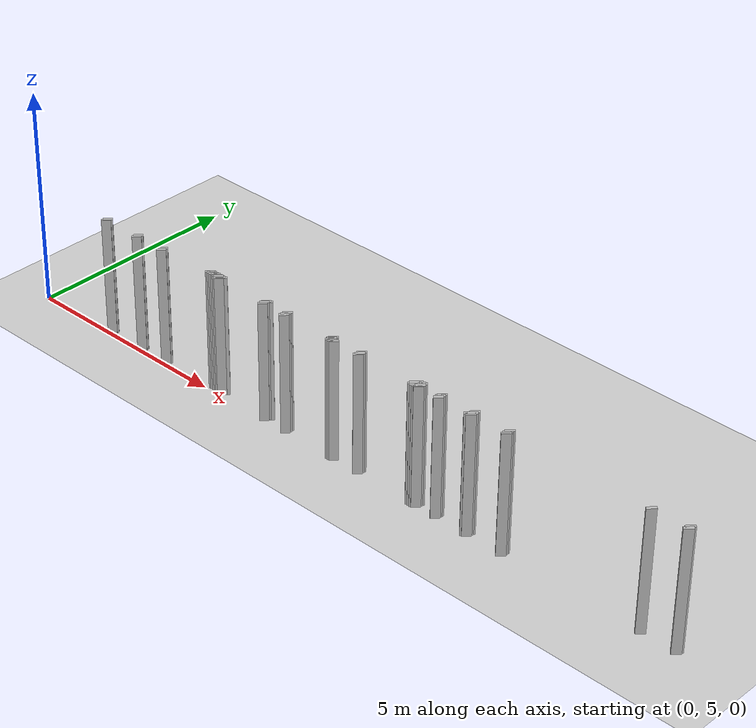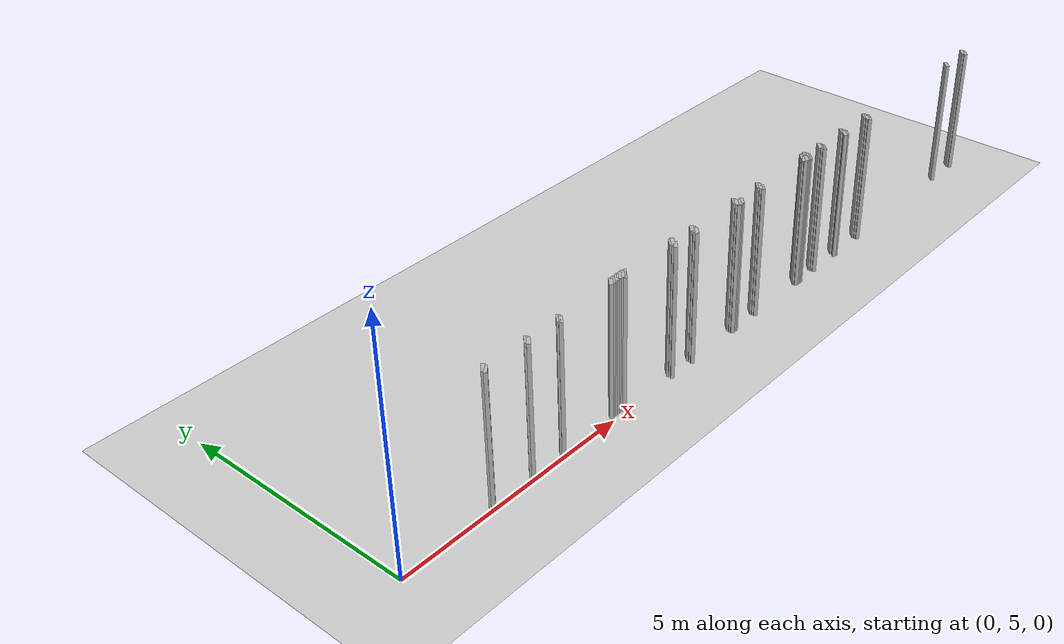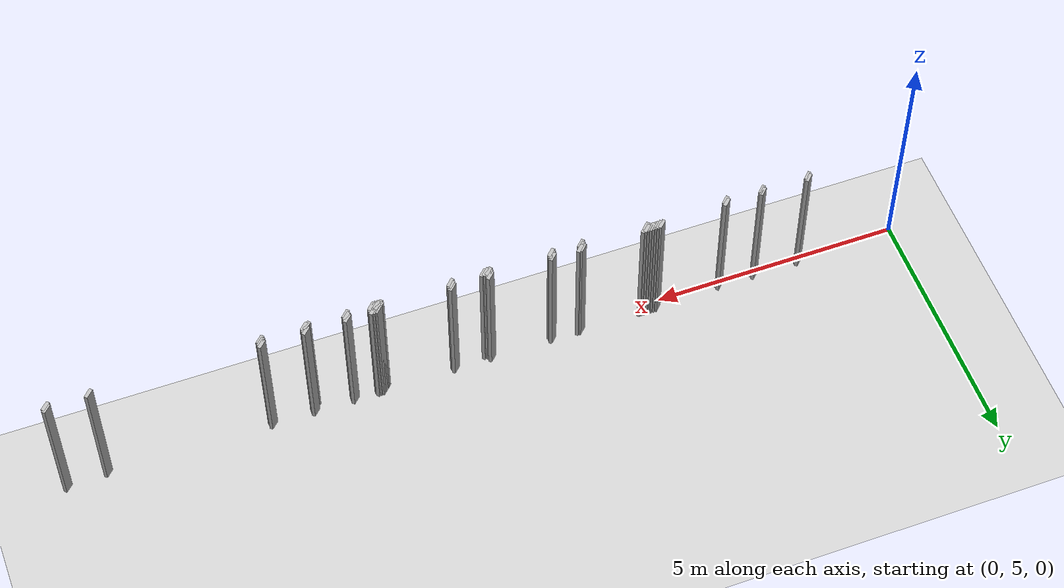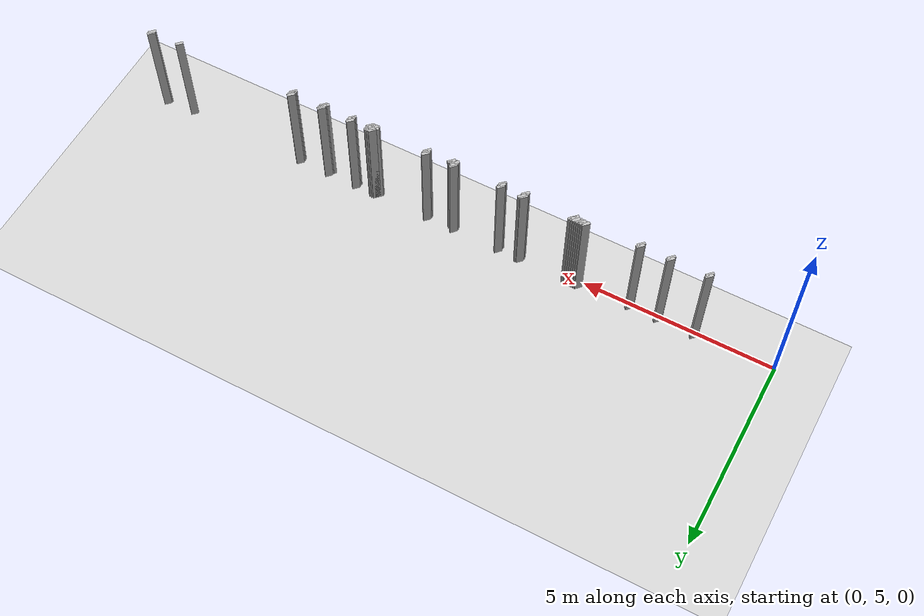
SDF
<sdf version="1.5">
 <world name="default">
  <include><uri>model://ground_plane</uri></include>
  <include><uri>model://sun</uri></include>
  <model name="grey_wall_2969">
   <static>1</static>
   <link name="link">
    <pose>5.1000000000000005 5.15  1.4 0 0 -0.7853981633974483</pose>
    <collision name="collision">
     <geometry><box><size>0.07071067811865576 .2  2.8</size></box></geometry>
    </collision>
    <visual name="visual">
     <cast_shadows>0</cast_shadows>
     <geometry><box><size>0.07071067811865576 .2  2.8</size></box></geometry>
    </visual>
   </link>
  </model>
  <model name="grey_wall_2970">
   <static>1</static>
   <link name="link">
    <pose>5.15 5.15  1.4 0 0 -0.7853981633974483</pose>
    <collision name="collision">
     <geometry><box><size>0.07071067811865576 .2  2.8</size></box></geometry>
    </collision>
    <visual name="visual">
     <cast_shadows>0</cast_shadows>
     <geometry><box><size>0.07071067811865576 .2  2.8</size></box></geometry>
    </visual>
   </link>
  </model>
  <model name="grey_wall_2971">
   <static>1</static>
   <link name="link">
    <pose>5.2 5.15  1.4 0 0 -0.7853981633974483</pose>
    <collision name="collision">
     <geometry><box><size>0.07071067811865576 .2  2.8</size></box></geometry>
    </collision>
    <visual name="visual">
     <cast_shadows>0</cast_shadows>
     <geometry><box><size>0.07071067811865576 .2  2.8</size></box></geometry>
    </visual>
   </link>
  </model>
  <model name="grey_wall_2972">
   <static>1</static>
   <link name="link">
    <pose>5.25 5.15  1.4 0 0 -0.7853981633974483</pose>
    <collision name="collision">
     <geometry><box><size>0.07071067811865576 .2  2.8</size></box></geometry>
    </collision>
    <visual name="visual">
     <cast_shadows>0</cast_shadows>
     <geometry><box><size>0.07071067811865576 .2  2.8</size></box></geometry>
    </visual>
   </link>
  </model>
  <model name="grey_wall_2973">
   <static>1</static>
   <link name="link">
    <pose>5.300000000000001 5.15  1.4 0 0 -0.7853981633974483</pose>
    <collision name="collision">
     <geometry><box><size>0.07071067811865576 .2  2.8</size></box></geometry>
    </collision>
    <visual name="visual">
     <cast_shadows>0</cast_shadows>
     <geometry><box><size>0.07071067811865576 .2  2.8</size></box></geometry>
    </visual>
   </link>
  </model>
  <model name="grey_wall_2974">
   <static>1</static>
   <link name="link">
    <pose>5.3500000000000005 5.15  1.4 0 0 -0.7853981633974483</pose>
    <collision name="collision">
     <geometry><box><size>0.07071067811865576 .2  2.8</size></box></geometry>
    </collision>
    <visual name="visual">
     <cast_shadows>0</cast_shadows>
     <geometry><box><size>0.07071067811865576 .2  2.8</size></box></geometry>
    </visual>
   </link>
  </model>
  <model name="grey_wall_2975">
   <static>1</static>
   <link name="link">
    <pose>5.4 5.15  1.4 0 0 -0.7853981633974483</pose>
    <collision name="collision">
     <geometry><box><size>0.07071067811865576 .2  2.8</size></box></geometry>
    </collision>
    <visual name="visual">
     <cast_shadows>0</cast_shadows>
     <geometry><box><size>0.07071067811865576 .2  2.8</size></box></geometry>
    </visual>
   </link>
  </model>
  <model name="grey_wall_2976">
   <static>1</static>
   <link name="link">
    <pose>5.45 5.15  1.4 0 0 -0.7853981633974483</pose>
    <collision name="collision">
     <geometry><box><size>0.07071067811865576 .2  2.8</size></box></geometry>
    </collision>
    <visual name="visual">
     <cast_shadows>0</cast_shadows>
     <geometry><box><size>0.07071067811865576 .2  2.8</size></box></geometry>
    </visual>
   </link>
  </model>
  <model name="grey_wall_2977">
   <static>1</static>
   <link name="link">
    <pose>6.7 5.15  1.4 0 0 -0.7853981633974483</pose>
    <collision name="collision">
     <geometry><box><size>0.07071067811865576 .2  2.8</size></box></geometry>
    </collision>
    <visual name="visual">
     <cast_shadows>0</cast_shadows>
     <geometry><box><size>0.07071067811865576 .2  2.8</size></box></geometry>
    </visual>
   </link>
  </model>
  <model name="grey_wall_2978">
   <static>1</static>
   <link name="link">
    <pose>6.75 5.15  1.4 0 0 -0.7853981633974483</pose>
    <collision name="collision">
     <geometry><box><size>0.07071067811865576 .2  2.8</size></box></geometry>
    </collision>
    <visual name="visual">
     <cast_shadows>0</cast_shadows>
     <geometry><box><size>0.07071067811865576 .2  2.8</size></box></geometry>
    </visual>
   </link>
  </model>
  <model name="grey_wall_2979">
   <static>1</static>
   <link name="link">
    <pose>7.300000000000001 5.15  1.4 0 0 -0.7853981633974483</pose>
    <collision name="collision">
     <geometry><box><size>0.07071067811865576 .2  2.8</size></box></geometry>
    </collision>
    <visual name="visual">
     <cast_shadows>0</cast_shadows>
     <geometry><box><size>0.07071067811865576 .2  2.8</size></box></geometry>
    </visual>
   </link>
  </model>
  <model name="grey_wall_2980">
   <static>1</static>
   <link name="link">
    <pose>8.55 5.15  1.4 0 0 -0.7853981633974483</pose>
    <collision name="collision">
     <geometry><box><size>0.07071067811865576 .2  2.8</size></box></geometry>
    </collision>
    <visual name="visual">
     <cast_shadows>0</cast_shadows>
     <geometry><box><size>0.07071067811865576 .2  2.8</size></box></geometry>
    </visual>
   </link>
  </model>
  <model name="grey_wall_2981">
   <static>1</static>
   <link name="link">
    <pose>9.3 5.15  1.4 0 0 -0.7853981633974483</pose>
    <collision name="collision">
     <geometry><box><size>0.07071067811865576 .2  2.8</size></box></geometry>
    </collision>
    <visual name="visual">
     <cast_shadows>0</cast_shadows>
     <geometry><box><size>0.07071067811865576 .2  2.8</size></box></geometry>
    </visual>
   </link>
  </model>
  <model name="grey_wall_2982">
   <static>1</static>
   <link name="link">
    <pose>10.75 5.15  1.4 0 0 -0.7853981633974483</pose>
    <collision name="collision">
     <geometry><box><size>0.07071067811865576 .2  2.8</size></box></geometry>
    </collision>
    <visual name="visual">
     <cast_shadows>0</cast_shadows>
     <geometry><box><size>0.07071067811865576 .2  2.8</size></box></geometry>
    </visual>
   </link>
  </model>
  <model name="grey_wall_2983">
   <static>1</static>
   <link name="link">
    <pose>10.8 5.15  1.4 0 0 -0.7853981633974483</pose>
    <collision name="collision">
     <geometry><box><size>0.07071067811865576 .2  2.8</size></box></geometry>
    </collision>
    <visual name="visual">
     <cast_shadows>0</cast_shadows>
     <geometry><box><size>0.07071067811865576 .2  2.8</size></box></geometry>
    </visual>
   </link>
  </model>
  <model name="grey_wall_2984">
   <static>1</static>
   <link name="link">
    <pose>10.850000000000001 5.15  1.4 0 0 -0.7853981633974483</pose>
    <collision name="collision">
     <geometry><box><size>0.07071067811865576 .2  2.8</size></box></geometry>
    </collision>
    <visual name="visual">
     <cast_shadows>0</cast_shadows>
     <geometry><box><size>0.07071067811865576 .2  2.8</size></box></geometry>
    </visual>
   </link>
  </model>
  <model name="grey_wall_2985">
   <static>1</static>
   <link name="link">
    <pose>11.350000000000001 5.15  1.4 0 0 -0.7853981633974483</pose>
    <collision name="collision">
     <geometry><box><size>0.07071067811865576 .2  2.8</size></box></geometry>
    </collision>
    <visual name="visual">
     <cast_shadows>0</cast_shadows>
     <geometry><box><size>0.07071067811865576 .2  2.8</size></box></geometry>
    </visual>
   </link>
  </model>
  <model name="grey_wall_2986">
   <static>1</static>
   <link name="link">
    <pose>12.15 5.15  1.4 0 0 -0.7853981633974483</pose>
    <collision name="collision">
     <geometry><box><size>0.07071067811865576 .2  2.8</size></box></geometry>
    </collision>
    <visual name="visual">
     <cast_shadows>0</cast_shadows>
     <geometry><box><size>0.07071067811865576 .2  2.8</size></box></geometry>
    </visual>
   </link>
  </model>
  <model name="grey_wall_2987">
   <static>1</static>
   <link name="link">
    <pose>13.0 5.15  1.4 0 0 -0.7853981633974483</pose>
    <collision name="collision">
     <geometry><box><size>0.07071067811865576 .2  2.8</size></box></geometry>
    </collision>
    <visual name="visual">
     <cast_shadows>0</cast_shadows>
     <geometry><box><size>0.07071067811865576 .2  2.8</size></box></geometry>
    </visual>
   </link>
  </model>
  <model name="grey_wall_2988">
   <static>1</static>
   <link name="link">
    <pose>17.05 5.15  1.4 0 0 -0.7853981633974838</pose>
    <collision name="collision">
     <geometry><box><size>0.07071067811865325 .2  2.8</size></box></geometry>
    </collision>
    <visual name="visual">
     <cast_shadows>0</cast_shadows>
     <geometry><box><size>0.07071067811865325 .2  2.8</size></box></geometry>
    </visual>
   </link>
  </model>
  <model name="grey_wall_2989">
   <static>1</static>
   <link name="link">
    <pose>2.0500000000000003 5.1000000000000005  1.4 0 0 -0.7853981633974572</pose>
    <collision name="collision">
     <geometry><box><size>0.07071067811865513 .2  2.8</size></box></geometry>
    </collision>
    <visual name="visual">
     <cast_shadows>0</cast_shadows>
     <geometry><box><size>0.07071067811865513 .2  2.8</size></box></geometry>
    </visual>
   </link>
  </model>
  <model name="grey_wall_2990">
   <static>1</static>
   <link name="link">
    <pose>3.0 5.1000000000000005  1.4 0 0 -0.7853981633974572</pose>
    <collision name="collision">
     <geometry><box><size>0.07071067811865513 .2  2.8</size></box></geometry>
    </collision>
    <visual name="visual">
     <cast_shadows>0</cast_shadows>
     <geometry><box><size>0.07071067811865513 .2  2.8</size></box></geometry>
    </visual>
   </link>
  </model>
  <model name="grey_wall_2991">
   <static>1</static>
   <link name="link">
    <pose>3.75 5.1000000000000005  1.4 0 0 -0.7853981633974572</pose>
    <collision name="collision">
     <geometry><box><size>0.07071067811865513 .2  2.8</size></box></geometry>
    </collision>
    <visual name="visual">
     <cast_shadows>0</cast_shadows>
     <geometry><box><size>0.07071067811865513 .2  2.8</size></box></geometry>
    </visual>
   </link>
  </model>
  <model name="grey_wall_2992">
   <static>1</static>
   <link name="link">
    <pose>5.4 5.1000000000000005  1.4 0 0 -0.7853981633974483</pose>
    <collision name="collision">
     <geometry><box><size>0.07071067811865576 .2  2.8</size></box></geometry>
    </collision>
    <visual name="visual">
     <cast_shadows>0</cast_shadows>
     <geometry><box><size>0.07071067811865576 .2  2.8</size></box></geometry>
    </visual>
   </link>
  </model>
  <model name="grey_wall_2993">
   <static>1</static>
   <link name="link">
    <pose>6.7 5.1000000000000005  1.4 0 0 -0.7853981633974483</pose>
    <collision name="collision">
     <geometry><box><size>0.07071067811865576 .2  2.8</size></box></geometry>
    </collision>
    <visual name="visual">
     <cast_shadows>0</cast_shadows>
     <geometry><box><size>0.07071067811865576 .2  2.8</size></box></geometry>
    </visual>
   </link>
  </model>
  <model name="grey_wall_2994">
   <static>1</static>
   <link name="link">
    <pose>7.300000000000001 5.1000000000000005  1.4 0 0 -0.7853981633974483</pose>
    <collision name="collision">
     <geometry><box><size>0.07071067811865576 .2  2.8</size></box></geometry>
    </collision>
    <visual name="visual">
     <cast_shadows>0</cast_shadows>
     <geometry><box><size>0.07071067811865576 .2  2.8</size></box></geometry>
    </visual>
   </link>
  </model>
  <model name="grey_wall_2995">
   <static>1</static>
   <link name="link">
    <pose>8.55 5.1000000000000005  1.4 0 0 -0.7853981633974483</pose>
    <collision name="collision">
     <geometry><box><size>0.07071067811865576 .2  2.8</size></box></geometry>
    </collision>
    <visual name="visual">
     <cast_shadows>0</cast_shadows>
     <geometry><box><size>0.07071067811865576 .2  2.8</size></box></geometry>
    </visual>
   </link>
  </model>
  <model name="grey_wall_2996">
   <static>1</static>
   <link name="link">
    <pose>9.3 5.1000000000000005  1.4 0 0 -0.7853981633974483</pose>
    <collision name="collision">
     <geometry><box><size>0.07071067811865576 .2  2.8</size></box></geometry>
    </collision>
    <visual name="visual">
     <cast_shadows>0</cast_shadows>
     <geometry><box><size>0.07071067811865576 .2  2.8</size></box></geometry>
    </visual>
   </link>
  </model>
  <model name="grey_wall_2997">
   <static>1</static>
   <link name="link">
    <pose>10.700000000000001 5.1000000000000005  1.4 0 0 -0.7853981633974483</pose>
    <collision name="collision">
     <geometry><box><size>0.07071067811865576 .2  2.8</size></box></geometry>
    </collision>
    <visual name="visual">
     <cast_shadows>0</cast_shadows>
     <geometry><box><size>0.07071067811865576 .2  2.8</size></box></geometry>
    </visual>
   </link>
  </model>
  <model name="grey_wall_2998">
   <static>1</static>
   <link name="link">
    <pose>10.75 5.1000000000000005  1.4 0 0 -0.7853981633974483</pose>
    <collision name="collision">
     <geometry><box><size>0.07071067811865576 .2  2.8</size></box></geometry>
    </collision>
    <visual name="visual">
     <cast_shadows>0</cast_shadows>
     <geometry><box><size>0.07071067811865576 .2  2.8</size></box></geometry>
    </visual>
   </link>
  </model>
  <model name="grey_wall_2999">
   <static>1</static>
   <link name="link">
    <pose>10.850000000000001 5.1000000000000005  1.4 0 0 -0.7853981633974483</pose>
    <collision name="collision">
     <geometry><box><size>0.07071067811865576 .2  2.8</size></box></geometry>
    </collision>
    <visual name="visual">
     <cast_shadows>0</cast_shadows>
     <geometry><box><size>0.07071067811865576 .2  2.8</size></box></geometry>
    </visual>
   </link>
  </model>
  <model name="grey_wall_3000">
   <static>1</static>
   <link name="link">
    <pose>11.350000000000001 5.1000000000000005  1.4 0 0 -0.7853981633974483</pose>
    <collision name="collision">
     <geometry><box><size>0.07071067811865576 .2  2.8</size></box></geometry>
    </collision>
    <visual name="visual">
     <cast_shadows>0</cast_shadows>
     <geometry><box><size>0.07071067811865576 .2  2.8</size></box></geometry>
    </visual>
   </link>
  </model>
  <model name="grey_wall_3001">
   <static>1</static>
   <link name="link">
    <pose>12.15 5.1000000000000005  1.4 0 0 -0.7853981633974483</pose>
    <collision name="collision">
     <geometry><box><size>0.07071067811865576 .2  2.8</size></box></geometry>
    </collision>
    <visual name="visual">
     <cast_shadows>0</cast_shadows>
     <geometry><box><size>0.07071067811865576 .2  2.8</size></box></geometry>
    </visual>
   </link>
  </model>
  <model name="grey_wall_3002">
   <static>1</static>
   <link name="link">
    <pose>13.0 5.1000000000000005  1.4 0 0 -0.7853981633974483</pose>
    <collision name="collision">
     <geometry><box><size>0.07071067811865576 .2  2.8</size></box></geometry>
    </collision>
    <visual name="visual">
     <cast_shadows>0</cast_shadows>
     <geometry><box><size>0.07071067811865576 .2  2.8</size></box></geometry>
    </visual>
   </link>
  </model>
  <model name="grey_wall_3003">
   <static>1</static>
   <link name="link">
    <pose>16.25 5.1000000000000005  1.4 0 0 -0.7853981633974838</pose>
    <collision name="collision">
     <geometry><box><size>0.07071067811865325 .2  2.8</size></box></geometry>
    </collision>
    <visual name="visual">
     <cast_shadows>0</cast_shadows>
     <geometry><box><size>0.07071067811865325 .2  2.8</size></box></geometry>
    </visual>
   </link>
  </model>
  <model name="grey_wall_3004">
   <static>1</static>
   <link name="link">
    <pose>17.05 5.1000000000000005  1.4 0 0 -0.7853981633974838</pose>
    <collision name="collision">
     <geometry><box><size>0.07071067811865325 .2  2.8</size></box></geometry>
    </collision>
    <visual name="visual">
     <cast_shadows>0</cast_shadows>
     <geometry><box><size>0.07071067811865325 .2  2.8</size></box></geometry>
    </visual>
   </link>
  </model>
  <model name="grey_wall_3005">
   <static>1</static>
   <link name="link">
    <pose>2.0500000000000003 5.050000000000001  1.4 0 0 -0.7853981633974572</pose>
    <collision name="collision">
     <geometry><box><size>0.07071067811865513 .2  2.8</size></box></geometry>
    </collision>
    <visual name="visual">
     <cast_shadows>0</cast_shadows>
     <geometry><box><size>0.07071067811865513 .2  2.8</size></box></geometry>
    </visual>
   </link>
  </model>
  <model name="grey_wall_3006">
   <static>1</static>
   <link name="link">
    <pose>3.0 5.050000000000001  1.4 0 0 -0.7853981633974572</pose>
    <collision name="collision">
     <geometry><box><size>0.07071067811865513 .2  2.8</size></box></geometry>
    </collision>
    <visual name="visual">
     <cast_shadows>0</cast_shadows>
     <geometry><box><size>0.07071067811865513 .2  2.8</size></box></geometry>
    </visual>
   </link>
  </model>
  <model name="grey_wall_3007">
   <static>1</static>
   <link name="link">
    <pose>3.75 5.050000000000001  1.4 0 0 -0.7853981633974572</pose>
    <collision name="collision">
     <geometry><box><size>0.07071067811865513 .2  2.8</size></box></geometry>
    </collision>
    <visual name="visual">
     <cast_shadows>0</cast_shadows>
     <geometry><box><size>0.07071067811865513 .2  2.8</size></box></geometry>
    </visual>
   </link>
  </model>
  <model name="grey_wall_3008">
   <static>1</static>
   <link name="link">
    <pose>6.7 5.050000000000001  1.4 0 0 -0.7853981633974483</pose>
    <collision name="collision">
     <geometry><box><size>0.07071067811865576 .2  2.8</size></box></geometry>
    </collision>
    <visual name="visual">
     <cast_shadows>0</cast_shadows>
     <geometry><box><size>0.07071067811865576 .2  2.8</size></box></geometry>
    </visual>
   </link>
  </model>
  <model name="grey_wall_3009">
   <static>1</static>
   <link name="link">
    <pose>7.300000000000001 5.050000000000001  1.4 0 0 -0.7853981633974483</pose>
    <collision name="collision">
     <geometry><box><size>0.07071067811865576 .2  2.8</size></box></geometry>
    </collision>
    <visual name="visual">
     <cast_shadows>0</cast_shadows>
     <geometry><box><size>0.07071067811865576 .2  2.8</size></box></geometry>
    </visual>
   </link>
  </model>
  <model name="grey_wall_3010">
   <static>1</static>
   <link name="link">
    <pose>8.55 5.050000000000001  1.4 0 0 -0.7853981633974483</pose>
    <collision name="collision">
     <geometry><box><size>0.07071067811865576 .2  2.8</size></box></geometry>
    </collision>
    <visual name="visual">
     <cast_shadows>0</cast_shadows>
     <geometry><box><size>0.07071067811865576 .2  2.8</size></box></geometry>
    </visual>
   </link>
  </model>
  <model name="grey_wall_3011">
   <static>1</static>
   <link name="link">
    <pose>8.6 5.050000000000001  1.4 0 0 -0.7853981633974483</pose>
    <collision name="collision">
     <geometry><box><size>0.07071067811865576 .2  2.8</size></box></geometry>
    </collision>
    <visual name="visual">
     <cast_shadows>0</cast_shadows>
     <geometry><box><size>0.07071067811865576 .2  2.8</size></box></geometry>
    </visual>
   </link>
  </model>
  <model name="grey_wall_3012">
   <static>1</static>
   <link name="link">
    <pose>8.65 5.050000000000001  1.4 0 0 -0.7853981633974483</pose>
    <collision name="collision">
     <geometry><box><size>0.07071067811865576 .2  2.8</size></box></geometry>
    </collision>
    <visual name="visual">
     <cast_shadows>0</cast_shadows>
     <geometry><box><size>0.07071067811865576 .2  2.8</size></box></geometry>
    </visual>
   </link>
  </model>
  <model name="grey_wall_3013">
   <static>1</static>
   <link name="link">
    <pose>9.3 5.050000000000001  1.4 0 0 -0.7853981633974483</pose>
    <collision name="collision">
     <geometry><box><size>0.07071067811865576 .2  2.8</size></box></geometry>
    </collision>
    <visual name="visual">
     <cast_shadows>0</cast_shadows>
     <geometry><box><size>0.07071067811865576 .2  2.8</size></box></geometry>
    </visual>
   </link>
  </model>
  <model name="grey_wall_3014">
   <static>1</static>
   <link name="link">
    <pose>10.700000000000001 5.050000000000001  1.4 0 0 -0.7853981633974483</pose>
    <collision name="collision">
     <geometry><box><size>0.07071067811865576 .2  2.8</size></box></geometry>
    </collision>
    <visual name="visual">
     <cast_shadows>0</cast_shadows>
     <geometry><box><size>0.07071067811865576 .2  2.8</size></box></geometry>
    </visual>
   </link>
  </model>
  <model name="grey_wall_3015">
   <static>1</static>
   <link name="link">
    <pose>10.75 5.050000000000001  1.4 0 0 -0.7853981633974483</pose>
    <collision name="collision">
     <geometry><box><size>0.07071067811865576 .2  2.8</size></box></geometry>
    </collision>
    <visual name="visual">
     <cast_shadows>0</cast_shadows>
     <geometry><box><size>0.07071067811865576 .2  2.8</size></box></geometry>
    </visual>
   </link>
  </model>
  <model name="grey_wall_3016">
   <static>1</static>
   <link name="link">
    <pose>10.8 5.050000000000001  1.4 0 0 -0.7853981633974483</pose>
    <collision name="collision">
     <geometry><box><size>0.07071067811865576 .2  2.8</size></box></geometry>
    </collision>
    <visual name="visual">
     <cast_shadows>0</cast_shadows>
     <geometry><box><size>0.07071067811865576 .2  2.8</size></box></geometry>
    </visual>
   </link>
  </model>
  <model name="grey_wall_3017">
   <static>1</static>
   <link name="link">
    <pose>10.850000000000001 5.050000000000001  1.4 0 0 -0.7853981633974483</pose>
    <collision name="collision">
     <geometry><box><size>0.07071067811865576 .2  2.8</size></box></geometry>
    </collision>
    <visual name="visual">
     <cast_shadows>0</cast_shadows>
     <geometry><box><size>0.07071067811865576 .2  2.8</size></box></geometry>
    </visual>
   </link>
  </model>
  <model name="grey_wall_3018">
   <static>1</static>
   <link name="link">
    <pose>11.350000000000001 5.050000000000001  1.4 0 0 -0.7853981633974483</pose>
    <collision name="collision">
     <geometry><box><size>0.07071067811865576 .2  2.8</size></box></geometry>
    </collision>
    <visual name="visual">
     <cast_shadows>0</cast_shadows>
     <geometry><box><size>0.07071067811865576 .2  2.8</size></box></geometry>
    </visual>
   </link>
  </model>
  <model name="grey_wall_3019">
   <static>1</static>
   <link name="link">
    <pose>12.100000000000001 5.050000000000001  1.4 0 0 -0.7853981633974483</pose>
    <collision name="collision">
     <geometry><box><size>0.07071067811865576 .2  2.8</size></box></geometry>
    </collision>
    <visual name="visual">
     <cast_shadows>0</cast_shadows>
     <geometry><box><size>0.07071067811865576 .2  2.8</size></box></geometry>
    </visual>
   </link>
  </model>
  <model name="grey_wall_3020">
   <static>1</static>
   <link name="link">
    <pose>12.15 5.050000000000001  1.4 0 0 -0.7853981633974483</pose>
    <collision name="collision">
     <geometry><box><size>0.07071067811865576 .2  2.8</size></box></geometry>
    </collision>
    <visual name="visual">
     <cast_shadows>0</cast_shadows>
     <geometry><box><size>0.07071067811865576 .2  2.8</size></box></geometry>
    </visual>
   </link>
  </model>
  <model name="grey_wall_3021">
   <static>1</static>
   <link name="link">
    <pose>13.0 5.050000000000001  1.4 0 0 -0.7853981633974483</pose>
    <collision name="collision">
     <geometry><box><size>0.07071067811865576 .2  2.8</size></box></geometry>
    </collision>
    <visual name="visual">
     <cast_shadows>0</cast_shadows>
     <geometry><box><size>0.07071067811865576 .2  2.8</size></box></geometry>
    </visual>
   </link>
  </model>
 </world>
</sdf>
